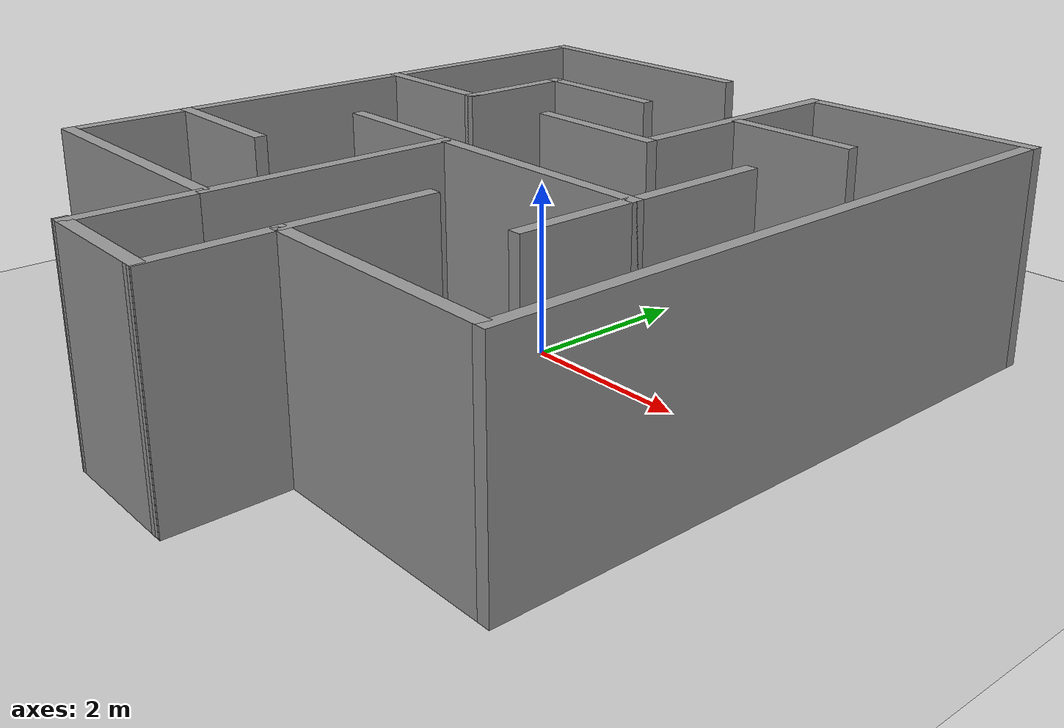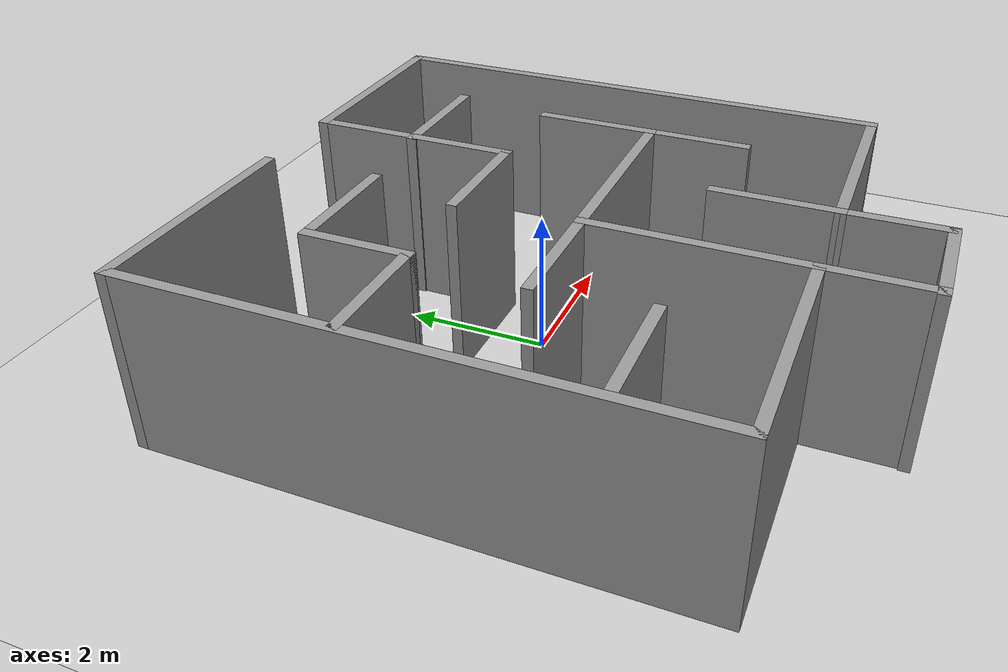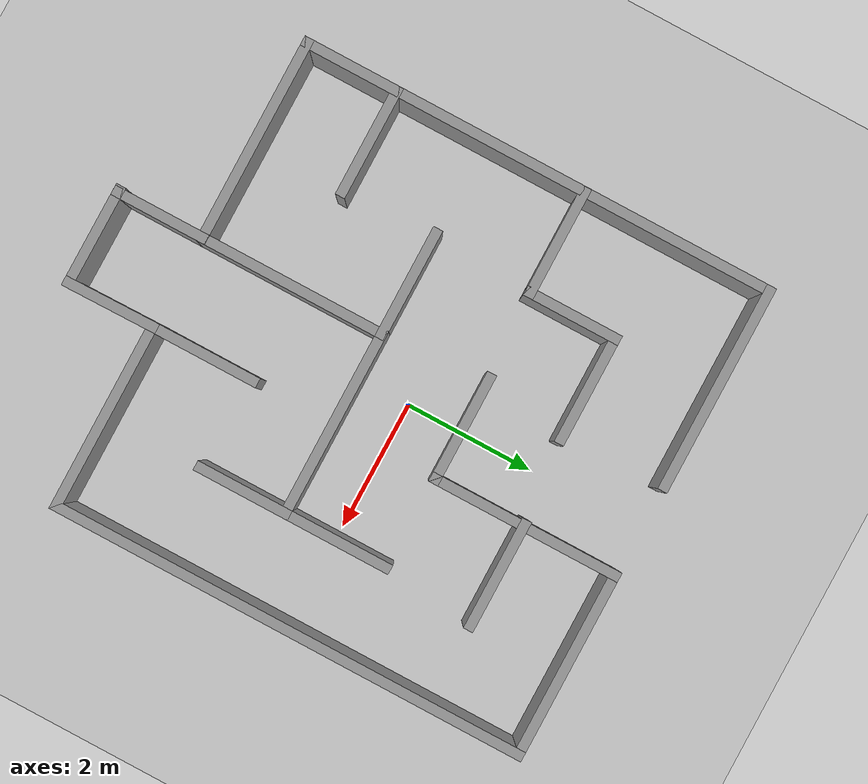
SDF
<sdf version="1.7">
 <world name="default">
  <light name="sun" type="directional">
   <pose>0 0 10 0 -0 0</pose>
   <diffuse>0.8 0.8 0.8 1</diffuse>
   <specular>0.2 0.2 0.2 1</specular>
   <attenuation>
    <range>1000</range>
    <constant>0.9</constant>
    <linear>0.01</linear>
    <quadratic>0.001</quadratic>
   </attenuation>
   <direction>-0.5 0.1 -0.9</direction>
   <spot><inner_angle>0</inner_angle><outer_angle>0</outer_angle><falloff>0</falloff></spot>
  </light>
  <model name="ground_plane">
   <static>1</static>
   <link name="link">
    <collision name="collision">
     <geometry><plane><normal>0 0 1</normal><size>100 100</size></plane></geometry>
     <surface>
      <contact><collide_bitmask>65535</collide_bitmask></contact>
      <friction><ode><mu>100</mu><mu2>50</mu2></ode></friction>
     </surface>
    </collision>
    <visual name="visual">
     <cast_shadows>0</cast_shadows>
     <geometry><plane><normal>0 0 1</normal><size>100 100</size></plane></geometry>
     <material>
      <script><uri>file://media/materials/scripts/gazebo.material</uri><name>Gazebo/Grey</name></script>
     </material>
    </visual>
   </link>
  </model>
  <gravity>0 0 -9.8</gravity>
  <magnetic_field>6e-06 2.3e-05 -4.2e-05</magnetic_field>
  <atmosphere type="adiabatic"/>
  <physics type="ode">
   <max_step_size>0.001</max_step_size>
   <real_time_factor>1</real_time_factor>
   <real_time_update_rate>1000</real_time_update_rate>
  </physics>
  <scene><ambient>0.4 0.4 0.4 1</ambient><background>0.7 0.7 0.7 1</background><shadows>1</shadows></scene>
  <audio><device>default</device></audio>
  <spherical_coordinates>
   <surface_model>EARTH_WGS84</surface_model>
   <latitude_deg>0</latitude_deg>
   <longitude_deg>0</longitude_deg>
   <elevation>0</elevation>
   <heading_deg>0</heading_deg>
  </spherical_coordinates>
  <model name="my_maze">
   <pose>-0.092953 -0.640973 0 0 -0 0</pose>
   <link name="Wall_0">
    <collision name="Wall_0_Collision">
     <geometry><box><size>3.25 0.15 2.5</size></box></geometry>
     <pose>0 0 1.25 0 -0 0</pose>
    </collision>
    <visual name="Wall_0_Visual">
     <pose>0 0 1.25 0 -0 0</pose>
     <geometry><box><size>3.25 0.15 2.5</size></box></geometry>
     <material>
      <script><uri>file://media/materials/scripts/gazebo.material</uri><name>Gazebo/Grey</name></script>
      <ambient>1 1 1 1</ambient>
     </material>
     <meta><layer>0</layer></meta>
    </visual>
    <pose>-2.13916 4.35177 0 0 -0 3.14159</pose>
   </link>
   <link name="Wall_1">
    <collision name="Wall_1_Collision">
     <geometry><box><size>7.5 0.15 2.5</size></box></geometry>
     <pose>0 0 1.25 0 -0 0</pose>
    </collision>
    <visual name="Wall_1_Visual">
     <pose>0 0 1.25 0 -0 0</pose>
     <geometry><box><size>7.5 0.15 2.5</size></box></geometry>
     <material>
      <script><uri>file://media/materials/scripts/gazebo.material</uri><name>Gazebo/Grey</name></script>
      <ambient>1 1 1 1</ambient>
     </material>
     <meta><layer>0</layer></meta>
    </visual>
    <pose>-3.68916 0.676774 0 0 -0 -1.5708</pose>
   </link>
   <link name="Wall_10">
    <collision name="Wall_10_Collision">
     <geometry><box><size>1.75 0.15 2.5</size></box></geometry>
     <pose>0 0 1.25 0 -0 0</pose>
    </collision>
    <visual name="Wall_10_Visual">
     <pose>0 0 1.25 0 -0 0</pose>
     <geometry><box><size>1.75 0.15 2.5</size></box></geometry>
     <material>
      <script><uri>file://media/materials/scripts/gazebo.material</uri><name>Gazebo/Grey</name></script>
      <ambient>1 1 1 1</ambient>
     </material>
     <meta><layer>0</layer></meta>
    </visual>
    <pose>-2.8849 -1.57736 0 0 -0 0</pose>
   </link>
   <link name="Wall_12">
    <collision name="Wall_12_Collision">
     <geometry><box><size>3 0.15 2.5</size></box></geometry>
     <pose>0 0 1.25 0 -0 0</pose>
    </collision>
    <visual name="Wall_12_Visual">
     <pose>0 0 1.25 0 -0 0</pose>
     <geometry><box><size>3 0.15 2.5</size></box></geometry>
     <material>
      <script><uri>file://media/materials/scripts/gazebo.material</uri><name>Gazebo/Grey</name></script>
      <ambient>1 1 1 1</ambient>
     </material>
     <meta><layer>0</layer></meta>
    </visual>
    <pose>0.83584 -0.148226 0 0 -0 0</pose>
   </link>
   <link name="Wall_13">
    <collision name="Wall_13_Collision">
     <geometry><box><size>1.75 0.15 2.5</size></box></geometry>
     <pose>0 0 1.25 0 -0 0</pose>
    </collision>
    <visual name="Wall_13_Visual">
     <pose>0 0 1.25 0 -0 0</pose>
     <geometry><box><size>1.75 0.15 2.5</size></box></geometry>
     <material>
      <script><uri>file://media/materials/scripts/gazebo.material</uri><name>Gazebo/Grey</name></script>
      <ambient>1 1 1 1</ambient>
     </material>
     <meta><layer>0</layer></meta>
    </visual>
    <pose>2.26084 0.651774 0 0 -0 1.5708</pose>
   </link>
   <link name="Wall_15">
    <collision name="Wall_15_Collision">
     <geometry><box><size>1.5 0.15 2.5</size></box></geometry>
     <pose>0 0 1.25 0 -0 0</pose>
    </collision>
    <visual name="Wall_15_Visual">
     <pose>0 0 1.25 0 -0 0</pose>
     <geometry><box><size>1.5 0.15 2.5</size></box></geometry>
     <material>
      <script><uri>file://media/materials/scripts/gazebo.material</uri><name>Gazebo/Grey</name></script>
      <ambient>1 1 1 1</ambient>
     </material>
     <meta><layer>0</layer></meta>
    </visual>
    <pose>2.26084 -0.823226 0 0 -0 -1.5708</pose>
   </link>
   <link name="Wall_2">
    <collision name="Wall_2_Collision">
     <geometry><box><size>3.25 0.15 2.5</size></box></geometry>
     <pose>0 0 1.25 0 -0 0</pose>
    </collision>
    <visual name="Wall_2_Visual">
     <pose>0 0 1.25 0 -0 0</pose>
     <geometry><box><size>3.25 0.15 2.5</size></box></geometry>
     <material>
      <script><uri>file://media/materials/scripts/gazebo.material</uri><name>Gazebo/Grey</name></script>
      <ambient>1 1 1 1</ambient>
     </material>
     <meta><layer>0</layer></meta>
    </visual>
    <pose>-2.13916 -2.99823 0 0 -0 0</pose>
   </link>
   <link name="Wall_3">
    <collision name="Wall_3_Collision">
     <geometry><box><size>3 0.15 2.5</size></box></geometry>
     <pose>0 0 1.25 0 -0 0</pose>
    </collision>
    <visual name="Wall_3_Visual">
     <pose>0 0 1.25 0 -0 0</pose>
     <geometry><box><size>3 0.15 2.5</size></box></geometry>
     <material>
      <script><uri>file://media/materials/scripts/gazebo.material</uri><name>Gazebo/Grey</name></script>
      <ambient>1 1 1 1</ambient>
     </material>
     <meta><layer>0</layer></meta>
    </visual>
    <pose>-0.58916 -1.57323 0 0 -0 1.5708</pose>
   </link>
   <link name="Wall_34">
    <collision name="Wall_34_Collision">
     <geometry><box><size>1.75 0.15 2.5</size></box></geometry>
     <pose>0 0 1.25 0 -0 0</pose>
    </collision>
    <visual name="Wall_34_Visual">
     <pose>0 0 1.25 0 -0 0</pose>
     <geometry><box><size>1.75 0.15 2.5</size></box></geometry>
     <material>
      <script><uri>file://media/materials/scripts/gazebo.material</uri><name>Gazebo/Grey</name></script>
      <ambient>1 1 1 1</ambient>
     </material>
     <meta><layer>0</layer></meta>
    </visual>
    <pose>0.83916 -2.22192 0 0 -0 -1.5708</pose>
   </link>
   <link name="Wall_35">
    <collision name="Wall_35_Collision">
     <geometry><box><size>3 0.15 2.5</size></box></geometry>
     <pose>0 0 1.25 0 -0 0</pose>
    </collision>
    <visual name="Wall_35_Visual">
     <pose>0 0 1.25 0 -0 0</pose>
     <geometry><box><size>3 0.15 2.5</size></box></geometry>
     <material>
      <script><uri>file://media/materials/scripts/gazebo.material</uri><name>Gazebo/Grey</name></script>
      <ambient>1 1 1 1</ambient>
     </material>
     <meta><layer>0</layer></meta>
    </visual>
    <pose>2.26416 -3.02192 0 0 -0 0</pose>
   </link>
   <link name="Wall_36">
    <collision name="Wall_36_Collision">
     <geometry><box><size>7.5 0.15 2.5</size></box></geometry>
     <pose>0 0 1.25 0 -0 0</pose>
    </collision>
    <visual name="Wall_36_Visual">
     <pose>0 0 1.25 0 -0 0</pose>
     <geometry><box><size>7.5 0.15 2.5</size></box></geometry>
     <material>
      <script><uri>file://media/materials/scripts/gazebo.material</uri><name>Gazebo/Grey</name></script>
      <ambient>1 1 1 1</ambient>
     </material>
     <meta><layer>0</layer></meta>
    </visual>
    <pose>3.68916 0.653078 0 0 -0 1.5708</pose>
   </link>
   <link name="Wall_37">
    <collision name="Wall_37_Collision">
     <geometry><box><size>3 0.15 2.5</size></box></geometry>
     <pose>0 0 1.25 0 -0 0</pose>
    </collision>
    <visual name="Wall_37_Visual">
     <pose>0 0 1.25 0 -0 0</pose>
     <geometry><box><size>3 0.15 2.5</size></box></geometry>
     <material>
      <script><uri>file://media/materials/scripts/gazebo.material</uri><name>Gazebo/Grey</name></script>
      <ambient>1 1 1 1</ambient>
     </material>
     <meta><layer>0</layer></meta>
    </visual>
    <pose>2.26416 4.32808 0 0 -0 3.14159</pose>
   </link>
   <link name="Wall_39">
    <collision name="Wall_39_Collision">
     <geometry><box><size>3 0.15 2.5</size></box></geometry>
     <pose>0 0 1.25 0 -0 0</pose>
    </collision>
    <visual name="Wall_39_Visual">
     <pose>0 0 1.25 0 -0 0</pose>
     <geometry><box><size>3 0.15 2.5</size></box></geometry>
     <material>
      <script><uri>file://media/materials/scripts/gazebo.material</uri><name>Gazebo/Grey</name></script>
      <ambient>1 1 1 1</ambient>
     </material>
     <meta><layer>0</layer></meta>
    </visual>
    <pose>0.83916 2.90308 0 0 -0 -1.5708</pose>
   </link>
   <link name="Wall_4">
    <collision name="Wall_4_Collision">
     <geometry><box><size>1.75 0.15 2.5</size></box></geometry>
     <pose>0 0 1.25 0 -0 0</pose>
    </collision>
    <visual name="Wall_4_Visual">
     <pose>0 0 1.25 0 -0 0</pose>
     <geometry><box><size>1.75 0.15 2.5</size></box></geometry>
     <material>
      <script><uri>file://media/materials/scripts/gazebo.material</uri><name>Gazebo/Grey</name></script>
      <ambient>1 1 1 1</ambient>
     </material>
     <meta><layer>0</layer></meta>
    </visual>
    <pose>-1.38916 -0.148226 0 0 -0 3.14159</pose>
   </link>
   <link name="Wall_40">
    <collision name="Wall_40_Collision">
     <geometry><box><size>1.75 0.15 2.5</size></box></geometry>
     <pose>0 0 1.25 0 -0 0</pose>
    </collision>
    <visual name="Wall_40_Visual">
     <pose>0 0 1.25 0 -0 0</pose>
     <geometry><box><size>1.75 0.15 2.5</size></box></geometry>
     <material>
      <script><uri>file://media/materials/scripts/gazebo.material</uri><name>Gazebo/Grey</name></script>
      <ambient>1 1 1 1</ambient>
     </material>
     <meta><layer>0</layer></meta>
    </visual>
    <pose>0.03916 1.47808 0 0 -0 3.14159</pose>
   </link>
   <link name="Wall_42">
    <collision name="Wall_42_Collision">
     <geometry><box><size>1.75 0.15 2.5</size></box></geometry>
     <pose>0 0 1.25 0 -0 0</pose>
    </collision>
    <visual name="Wall_42_Visual">
     <pose>0 0 1.25 0 -0 0</pose>
     <geometry><box><size>1.75 0.15 2.5</size></box></geometry>
     <material>
      <script><uri>file://media/materials/scripts/gazebo.material</uri><name>Gazebo/Grey</name></script>
      <ambient>1 1 1 1</ambient>
     </material>
     <meta><layer>0</layer></meta>
    </visual>
    <pose>1.61603 2.88037 0 0 -0 0</pose>
   </link>
   <link name="Wall_44">
    <collision name="Wall_44_Collision">
     <geometry><box><size>1.49481 0.15 2.5</size></box></geometry>
     <pose>0 0 1.25 0 -0 0</pose>
    </collision>
    <visual name="Wall_44_Visual">
     <pose>0 0 1.25 0 -0 0</pose>
     <geometry><box><size>1.49481 0.15 2.5</size></box></geometry>
     <material>
      <script><uri>file://media/materials/scripts/gazebo.material</uri><name>Gazebo/Grey</name></script>
      <ambient>1 1 1 1</ambient>
     </material>
     <meta><layer>0</layer></meta>
    </visual>
    <pose>-0.58916 -3.67063 0 0 -0 -1.5708</pose>
   </link>
   <link name="Wall_45">
    <collision name="Wall_45_Collision">
     <geometry><box><size>1.59257 0.15 2.5</size></box></geometry>
     <pose>0 0 1.25 0 -0 0</pose>
    </collision>
    <visual name="Wall_45_Visual">
     <pose>0 0 1.25 0 -0 0</pose>
     <geometry><box><size>1.59257 0.15 2.5</size></box></geometry>
     <material>
      <script><uri>file://media/materials/scripts/gazebo.material</uri><name>Gazebo/Grey</name></script>
      <ambient>1 1 1 1</ambient>
     </material>
     <meta><layer>0</layer></meta>
    </visual>
    <pose>0.105513 -4.347 0 0 -0 -0.005507</pose>
   </link>
   <link name="Wall_47">
    <collision name="Wall_47_Collision">
     <geometry><box><size>1.47913 0.15 2.5</size></box></geometry>
     <pose>0 0 1.25 0 -0 0</pose>
    </collision>
    <visual name="Wall_47_Visual">
     <pose>0 0 1.25 0 -0 0</pose>
     <geometry><box><size>1.47913 0.15 2.5</size></box></geometry>
     <material>
      <script><uri>file://media/materials/scripts/gazebo.material</uri><name>Gazebo/Grey</name></script>
      <ambient>1 1 1 1</ambient>
     </material>
     <meta><layer>0</layer></meta>
    </visual>
    <pose>0.846273 -3.68645 0 0 -0 -1.56009</pose>
   </link>
   <link name="Wall_6">
    <collision name="Wall_6_Collision">
     <geometry><box><size>1.75 0.15 2.5</size></box></geometry>
     <pose>0 0 1.25 0 -0 0</pose>
    </collision>
    <visual name="Wall_6_Visual">
     <pose>0 0 1.25 0 -0 0</pose>
     <geometry><box><size>1.75 0.15 2.5</size></box></geometry>
     <material>
      <script><uri>file://media/materials/scripts/gazebo.material</uri><name>Gazebo/Grey</name></script>
      <ambient>1 1 1 1</ambient>
     </material>
     <meta><layer>0</layer></meta>
    </visual>
    <pose>-2.8849 1.41344 0 0 -0 0</pose>
   </link>
   <link name="Wall_7">
    <collision name="Wall_7_Collision">
     <geometry><box><size>1.5 0.15 2.5</size></box></geometry>
     <pose>0 0 1.25 0 -0 0</pose>
    </collision>
    <visual name="Wall_7_Visual">
     <pose>0 0 1.25 0 -0 0</pose>
     <geometry><box><size>1.5 0.15 2.5</size></box></geometry>
     <material>
      <script><uri>file://media/materials/scripts/gazebo.material</uri><name>Gazebo/Grey</name></script>
      <ambient>1 1 1 1</ambient>
     </material>
     <meta><layer>0</layer></meta>
    </visual>
    <pose>-2.0849 2.08844 0 0 -0 1.5708</pose>
   </link>
   <link name="Wall_8">
    <collision name="Wall_8_Collision">
     <geometry><box><size>1.75 0.15 2.5</size></box></geometry>
     <pose>0 0 1.25 0 -0 0</pose>
    </collision>
    <visual name="Wall_8_Visual">
     <pose>0 0 1.25 0 -0 0</pose>
     <geometry><box><size>1.75 0.15 2.5</size></box></geometry>
     <material>
      <script><uri>file://media/materials/scripts/gazebo.material</uri><name>Gazebo/Grey</name></script>
      <ambient>1 1 1 1</ambient>
     </material>
     <meta><layer>0</layer></meta>
    </visual>
    <pose>-1.2849 2.76344 0 0 -0 0</pose>
   </link>
   <static>1</static>
  </model>
 </world>
</sdf>
